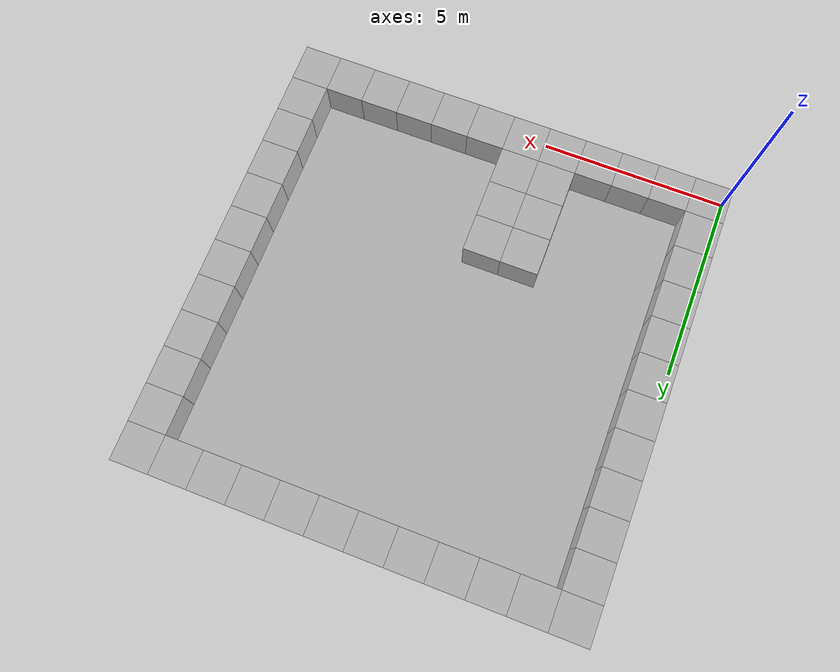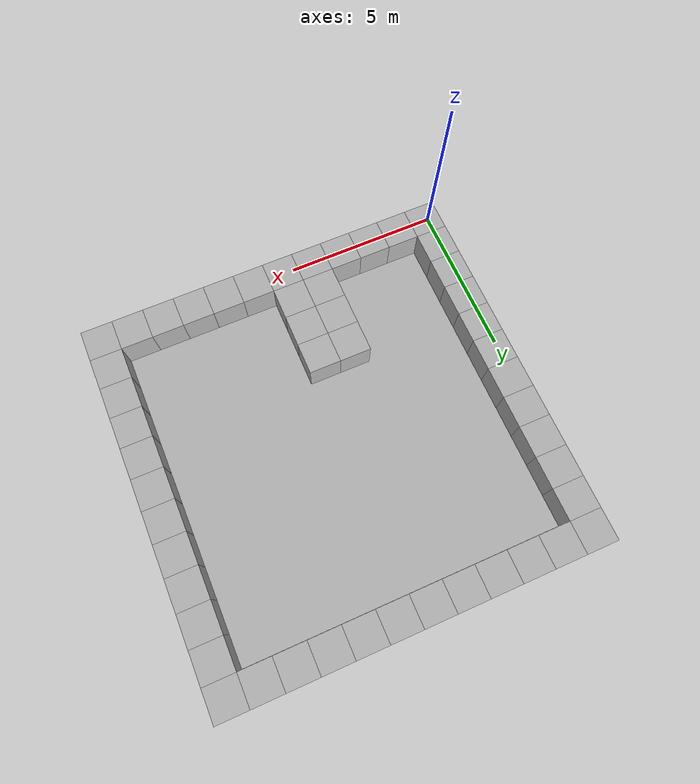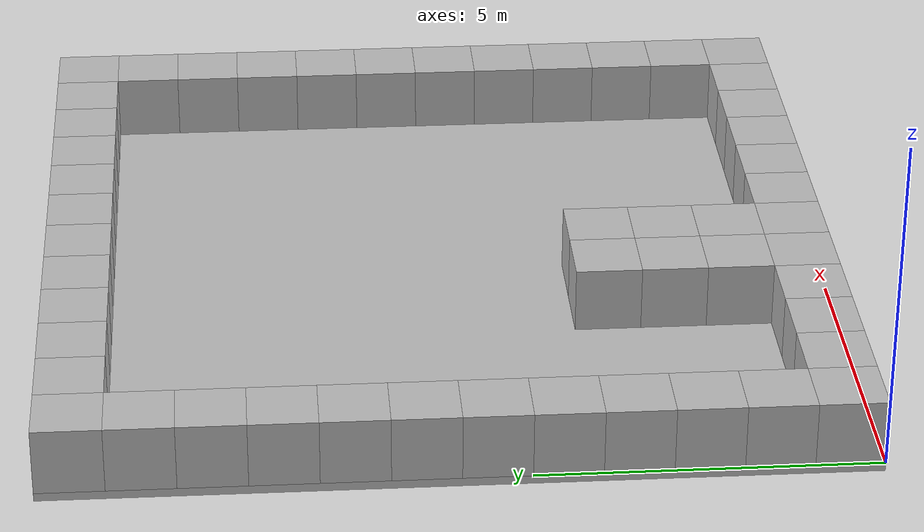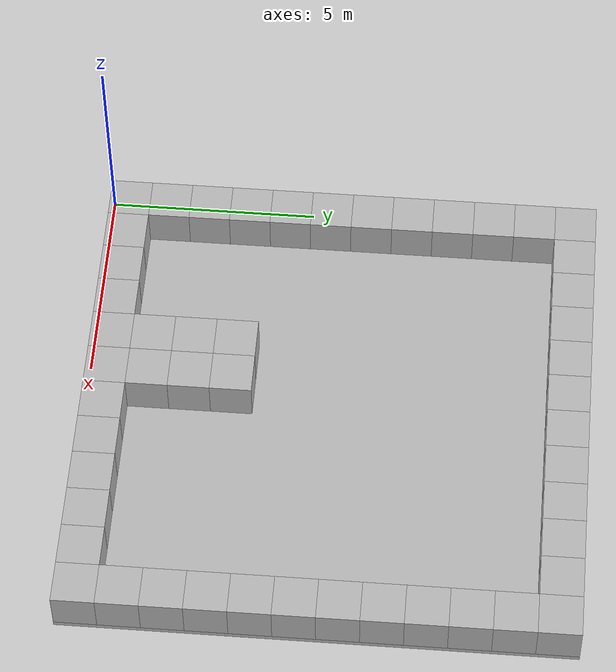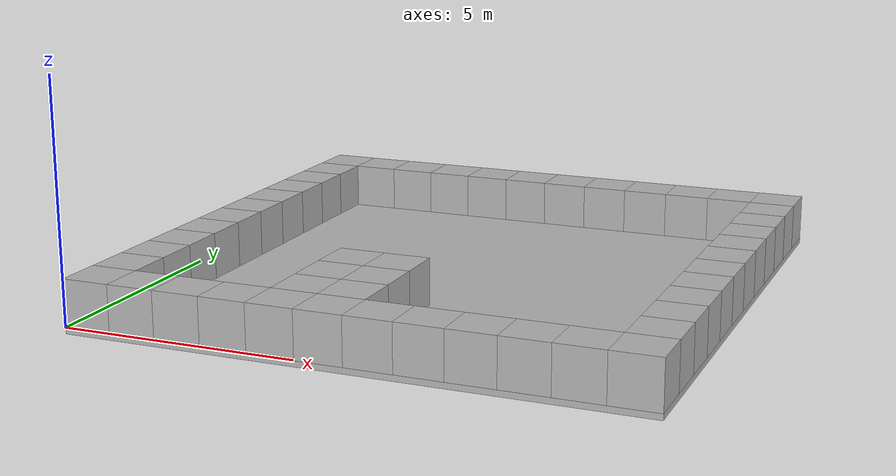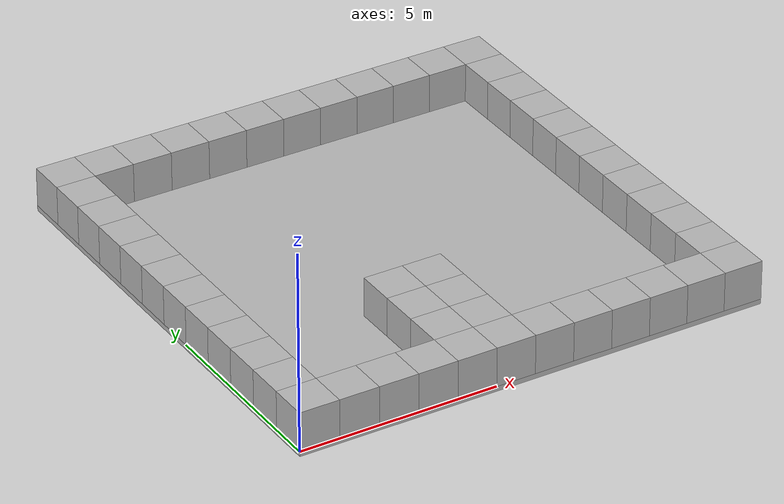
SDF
<sdf version="1.4">
  <world name="default">
    <light name="sun" type="directional">
      <cast_shadows>1</cast_shadows>
      <diffuse>0.8 0.8 0.8 1</diffuse>
      <specular>0.1 0.1 0.1 1</specular>
      <attenuation>
        <range>1000</range>
        <constant>0.9</constant>
        <linear>0.01</linear>
        <quadratic>0.001</quadratic>
      </attenuation>
      <direction>-0.5 0.5 -1</direction>
    </light>
    <plugin
      filename="ignition-gazebo-physics-system"
      name="ignition::gazebo::systems::Physics">
    </plugin>
    <plugin
      filename="ignition-gazebo-user-commands-system"
      name="ignition::gazebo::systems::UserCommands">
    </plugin>
    <plugin
      filename="ignition-gazebo-scene-broadcaster-system"
      name="ignition::gazebo::systems::SceneBroadcaster">
    </plugin>
    <plugin
      filename="ignition-gazebo-sensors-system"
      name="ignition::gazebo::systems::Sensors">
      <render_engine>ogre2</render_engine>
    </plugin>

    <model name="floor">
      <pose>6.0 6.0 -0.0625 0 0 0</pose>
      <static>true</static>
      <link name="link">
        <collision name="collision">
          <geometry>
            <box>
              <size>12.0 12.0 0.125</size>
            </box>
          </geometry>
        </collision>
        <visual name="visual">
          <geometry>
            <box>
              <size>12.0 12.0 0.125</size>
            </box>
          </geometry>
        </visual>
      </link>
    </model>
    <model name="box_0_0">
      <pose>0.5 0.5 0.5 0 0 0</pose>
      <static>true</static>
      <link name="link">
        <collision name="collision">
          <geometry>
            <box>
              <size>1.0 1.0 1.0</size>
            </box>
          </geometry>
        </collision>
        <visual name="visual">
          <geometry>
            <box>
              <size>1.0 1.0 1.0</size>
            </box>
          </geometry>
        </visual>
      </link>
    </model>
    <model name="box_0_1">
      <pose>0.5 1.5 0.5 0 0 0</pose>
      <static>true</static>
      <link name="link">
        <collision name="collision">
          <geometry>
            <box>
              <size>1.0 1.0 1.0</size>
            </box>
          </geometry>
        </collision>
        <visual name="visual">
          <geometry>
            <box>
              <size>1.0 1.0 1.0</size>
            </box>
          </geometry>
        </visual>
      </link>
    </model>
    <model name="box_0_2">
      <pose>0.5 2.5 0.5 0 0 0</pose>
      <static>true</static>
      <link name="link">
        <collision name="collision">
          <geometry>
            <box>
              <size>1.0 1.0 1.0</size>
            </box>
          </geometry>
        </collision>
        <visual name="visual">
          <geometry>
            <box>
              <size>1.0 1.0 1.0</size>
            </box>
          </geometry>
        </visual>
      </link>
    </model>
    <model name="box_0_3">
      <pose>0.5 3.5 0.5 0 0 0</pose>
      <static>true</static>
      <link name="link">
        <collision name="collision">
          <geometry>
            <box>
              <size>1.0 1.0 1.0</size>
            </box>
          </geometry>
        </collision>
        <visual name="visual">
          <geometry>
            <box>
              <size>1.0 1.0 1.0</size>
            </box>
          </geometry>
        </visual>
      </link>
    </model>
    <model name="box_0_4">
      <pose>0.5 4.5 0.5 0 0 0</pose>
      <static>true</static>
      <link name="link">
        <collision name="collision">
          <geometry>
            <box>
              <size>1.0 1.0 1.0</size>
            </box>
          </geometry>
        </collision>
        <visual name="visual">
          <geometry>
            <box>
              <size>1.0 1.0 1.0</size>
            </box>
          </geometry>
        </visual>
      </link>
    </model>
    <model name="box_0_5">
      <pose>0.5 5.5 0.5 0 0 0</pose>
      <static>true</static>
      <link name="link">
        <collision name="collision">
          <geometry>
            <box>
              <size>1.0 1.0 1.0</size>
            </box>
          </geometry>
        </collision>
        <visual name="visual">
          <geometry>
            <box>
              <size>1.0 1.0 1.0</size>
            </box>
          </geometry>
        </visual>
      </link>
    </model>
    <model name="box_0_6">
      <pose>0.5 6.5 0.5 0 0 0</pose>
      <static>true</static>
      <link name="link">
        <collision name="collision">
          <geometry>
            <box>
              <size>1.0 1.0 1.0</size>
            </box>
          </geometry>
        </collision>
        <visual name="visual">
          <geometry>
            <box>
              <size>1.0 1.0 1.0</size>
            </box>
          </geometry>
        </visual>
      </link>
    </model>
    <model name="box_0_7">
      <pose>0.5 7.5 0.5 0 0 0</pose>
      <static>true</static>
      <link name="link">
        <collision name="collision">
          <geometry>
            <box>
              <size>1.0 1.0 1.0</size>
            </box>
          </geometry>
        </collision>
        <visual name="visual">
          <geometry>
            <box>
              <size>1.0 1.0 1.0</size>
            </box>
          </geometry>
        </visual>
      </link>
    </model>
    <model name="box_0_8">
      <pose>0.5 8.5 0.5 0 0 0</pose>
      <static>true</static>
      <link name="link">
        <collision name="collision">
          <geometry>
            <box>
              <size>1.0 1.0 1.0</size>
            </box>
          </geometry>
        </collision>
        <visual name="visual">
          <geometry>
            <box>
              <size>1.0 1.0 1.0</size>
            </box>
          </geometry>
        </visual>
      </link>
    </model>
    <model name="box_0_9">
      <pose>0.5 9.5 0.5 0 0 0</pose>
      <static>true</static>
      <link name="link">
        <collision name="collision">
          <geometry>
            <box>
              <size>1.0 1.0 1.0</size>
            </box>
          </geometry>
        </collision>
        <visual name="visual">
          <geometry>
            <box>
              <size>1.0 1.0 1.0</size>
            </box>
          </geometry>
        </visual>
      </link>
    </model>
    <model name="box_0_10">
      <pose>0.5 10.5 0.5 0 0 0</pose>
      <static>true</static>
      <link name="link">
        <collision name="collision">
          <geometry>
            <box>
              <size>1.0 1.0 1.0</size>
            </box>
          </geometry>
        </collision>
        <visual name="visual">
          <geometry>
            <box>
              <size>1.0 1.0 1.0</size>
            </box>
          </geometry>
        </visual>
      </link>
    </model>
    <model name="box_0_11">
      <pose>0.5 11.5 0.5 0 0 0</pose>
      <static>true</static>
      <link name="link">
        <collision name="collision">
          <geometry>
            <box>
              <size>1.0 1.0 1.0</size>
            </box>
          </geometry>
        </collision>
        <visual name="visual">
          <geometry>
            <box>
              <size>1.0 1.0 1.0</size>
            </box>
          </geometry>
        </visual>
      </link>
    </model>
    <model name="box_1_0">
      <pose>1.5 0.5 0.5 0 0 0</pose>
      <static>true</static>
      <link name="link">
        <collision name="collision">
          <geometry>
            <box>
              <size>1.0 1.0 1.0</size>
            </box>
          </geometry>
        </collision>
        <visual name="visual">
          <geometry>
            <box>
              <size>1.0 1.0 1.0</size>
            </box>
          </geometry>
        </visual>
      </link>
    </model>
    <model name="box_1_11">
      <pose>1.5 11.5 0.5 0 0 0</pose>
      <static>true</static>
      <link name="link">
        <collision name="collision">
          <geometry>
            <box>
              <size>1.0 1.0 1.0</size>
            </box>
          </geometry>
        </collision>
        <visual name="visual">
          <geometry>
            <box>
              <size>1.0 1.0 1.0</size>
            </box>
          </geometry>
        </visual>
      </link>
    </model>
    <model name="box_2_0">
      <pose>2.5 0.5 0.5 0 0 0</pose>
      <static>true</static>
      <link name="link">
        <collision name="collision">
          <geometry>
            <box>
              <size>1.0 1.0 1.0</size>
            </box>
          </geometry>
        </collision>
        <visual name="visual">
          <geometry>
            <box>
              <size>1.0 1.0 1.0</size>
            </box>
          </geometry>
        </visual>
      </link>
    </model>
    <model name="box_2_11">
      <pose>2.5 11.5 0.5 0 0 0</pose>
      <static>true</static>
      <link name="link">
        <collision name="collision">
          <geometry>
            <box>
              <size>1.0 1.0 1.0</size>
            </box>
          </geometry>
        </collision>
        <visual name="visual">
          <geometry>
            <box>
              <size>1.0 1.0 1.0</size>
            </box>
          </geometry>
        </visual>
      </link>
    </model>
    <model name="box_3_0">
      <pose>3.5 0.5 0.5 0 0 0</pose>
      <static>true</static>
      <link name="link">
        <collision name="collision">
          <geometry>
            <box>
              <size>1.0 1.0 1.0</size>
            </box>
          </geometry>
        </collision>
        <visual name="visual">
          <geometry>
            <box>
              <size>1.0 1.0 1.0</size>
            </box>
          </geometry>
        </visual>
      </link>
    </model>
    <model name="box_3_11">
      <pose>3.5 11.5 0.5 0 0 0</pose>
      <static>true</static>
      <link name="link">
        <collision name="collision">
          <geometry>
            <box>
              <size>1.0 1.0 1.0</size>
            </box>
          </geometry>
        </collision>
        <visual name="visual">
          <geometry>
            <box>
              <size>1.0 1.0 1.0</size>
            </box>
          </geometry>
        </visual>
      </link>
    </model>
    <model name="box_4_0">
      <pose>4.5 0.5 0.5 0 0 0</pose>
      <static>true</static>
      <link name="link">
        <collision name="collision">
          <geometry>
            <box>
              <size>1.0 1.0 1.0</size>
            </box>
          </geometry>
        </collision>
        <visual name="visual">
          <geometry>
            <box>
              <size>1.0 1.0 1.0</size>
            </box>
          </geometry>
        </visual>
      </link>
    </model>
    <model name="box_4_1">
      <pose>4.5 1.5 0.5 0 0 0</pose>
      <static>true</static>
      <link name="link">
        <collision name="collision">
          <geometry>
            <box>
              <size>1.0 1.0 1.0</size>
            </box>
          </geometry>
        </collision>
        <visual name="visual">
          <geometry>
            <box>
              <size>1.0 1.0 1.0</size>
            </box>
          </geometry>
        </visual>
      </link>
    </model>
    <model name="box_4_2">
      <pose>4.5 2.5 0.5 0 0 0</pose>
      <static>true</static>
      <link name="link">
        <collision name="collision">
          <geometry>
            <box>
              <size>1.0 1.0 1.0</size>
            </box>
          </geometry>
        </collision>
        <visual name="visual">
          <geometry>
            <box>
              <size>1.0 1.0 1.0</size>
            </box>
          </geometry>
        </visual>
      </link>
    </model>
    <model name="box_4_3">
      <pose>4.5 3.5 0.5 0 0 0</pose>
      <static>true</static>
      <link name="link">
        <collision name="collision">
          <geometry>
            <box>
              <size>1.0 1.0 1.0</size>
            </box>
          </geometry>
        </collision>
        <visual name="visual">
          <geometry>
            <box>
              <size>1.0 1.0 1.0</size>
            </box>
          </geometry>
        </visual>
      </link>
    </model>
    <model name="box_4_11">
      <pose>4.5 11.5 0.5 0 0 0</pose>
      <static>true</static>
      <link name="link">
        <collision name="collision">
          <geometry>
            <box>
              <size>1.0 1.0 1.0</size>
            </box>
          </geometry>
        </collision>
        <visual name="visual">
          <geometry>
            <box>
              <size>1.0 1.0 1.0</size>
            </box>
          </geometry>
        </visual>
      </link>
    </model>
    <model name="box_5_0">
      <pose>5.5 0.5 0.5 0 0 0</pose>
      <static>true</static>
      <link name="link">
        <collision name="collision">
          <geometry>
            <box>
              <size>1.0 1.0 1.0</size>
            </box>
          </geometry>
        </collision>
        <visual name="visual">
          <geometry>
            <box>
              <size>1.0 1.0 1.0</size>
            </box>
          </geometry>
        </visual>
      </link>
    </model>
    <model name="box_5_1">
      <pose>5.5 1.5 0.5 0 0 0</pose>
      <static>true</static>
      <link name="link">
        <collision name="collision">
          <geometry>
            <box>
              <size>1.0 1.0 1.0</size>
            </box>
          </geometry>
        </collision>
        <visual name="visual">
          <geometry>
            <box>
              <size>1.0 1.0 1.0</size>
            </box>
          </geometry>
        </visual>
      </link>
    </model>
    <model name="box_5_2">
      <pose>5.5 2.5 0.5 0 0 0</pose>
      <static>true</static>
      <link name="link">
        <collision name="collision">
          <geometry>
            <box>
              <size>1.0 1.0 1.0</size>
            </box>
          </geometry>
        </collision>
        <visual name="visual">
          <geometry>
            <box>
              <size>1.0 1.0 1.0</size>
            </box>
          </geometry>
        </visual>
      </link>
    </model>
    <model name="box_5_3">
      <pose>5.5 3.5 0.5 0 0 0</pose>
      <static>true</static>
      <link name="link">
        <collision name="collision">
          <geometry>
            <box>
              <size>1.0 1.0 1.0</size>
            </box>
          </geometry>
        </collision>
        <visual name="visual">
          <geometry>
            <box>
              <size>1.0 1.0 1.0</size>
            </box>
          </geometry>
        </visual>
      </link>
    </model>
    <model name="box_5_11">
      <pose>5.5 11.5 0.5 0 0 0</pose>
      <static>true</static>
      <link name="link">
        <collision name="collision">
          <geometry>
            <box>
              <size>1.0 1.0 1.0</size>
            </box>
          </geometry>
        </collision>
        <visual name="visual">
          <geometry>
            <box>
              <size>1.0 1.0 1.0</size>
            </box>
          </geometry>
        </visual>
      </link>
    </model>
    <model name="box_6_0">
      <pose>6.5 0.5 0.5 0 0 0</pose>
      <static>true</static>
      <link name="link">
        <collision name="collision">
          <geometry>
            <box>
              <size>1.0 1.0 1.0</size>
            </box>
          </geometry>
        </collision>
        <visual name="visual">
          <geometry>
            <box>
              <size>1.0 1.0 1.0</size>
            </box>
          </geometry>
        </visual>
      </link>
    </model>
    <model name="box_6_11">
      <pose>6.5 11.5 0.5 0 0 0</pose>
      <static>true</static>
      <link name="link">
        <collision name="collision">
          <geometry>
            <box>
              <size>1.0 1.0 1.0</size>
            </box>
          </geometry>
        </collision>
        <visual name="visual">
          <geometry>
            <box>
              <size>1.0 1.0 1.0</size>
            </box>
          </geometry>
        </visual>
      </link>
    </model>
    <model name="box_7_0">
      <pose>7.5 0.5 0.5 0 0 0</pose>
      <static>true</static>
      <link name="link">
        <collision name="collision">
          <geometry>
            <box>
              <size>1.0 1.0 1.0</size>
            </box>
          </geometry>
        </collision>
        <visual name="visual">
          <geometry>
            <box>
              <size>1.0 1.0 1.0</size>
            </box>
          </geometry>
        </visual>
      </link>
    </model>
    <model name="box_7_11">
      <pose>7.5 11.5 0.5 0 0 0</pose>
      <static>true</static>
      <link name="link">
        <collision name="collision">
          <geometry>
            <box>
              <size>1.0 1.0 1.0</size>
            </box>
          </geometry>
        </collision>
        <visual name="visual">
          <geometry>
            <box>
              <size>1.0 1.0 1.0</size>
            </box>
          </geometry>
        </visual>
      </link>
    </model>
    <model name="box_8_0">
      <pose>8.5 0.5 0.5 0 0 0</pose>
      <static>true</static>
      <link name="link">
        <collision name="collision">
          <geometry>
            <box>
              <size>1.0 1.0 1.0</size>
            </box>
          </geometry>
        </collision>
        <visual name="visual">
          <geometry>
            <box>
              <size>1.0 1.0 1.0</size>
            </box>
          </geometry>
        </visual>
      </link>
    </model>
    <model name="box_8_11">
      <pose>8.5 11.5 0.5 0 0 0</pose>
      <static>true</static>
      <link name="link">
        <collision name="collision">
          <geometry>
            <box>
              <size>1.0 1.0 1.0</size>
            </box>
          </geometry>
        </collision>
        <visual name="visual">
          <geometry>
            <box>
              <size>1.0 1.0 1.0</size>
            </box>
          </geometry>
        </visual>
      </link>
    </model>
    <model name="box_9_0">
      <pose>9.5 0.5 0.5 0 0 0</pose>
      <static>true</static>
      <link name="link">
        <collision name="collision">
          <geometry>
            <box>
              <size>1.0 1.0 1.0</size>
            </box>
          </geometry>
        </collision>
        <visual name="visual">
          <geometry>
            <box>
              <size>1.0 1.0 1.0</size>
            </box>
          </geometry>
        </visual>
      </link>
    </model>
    <model name="box_9_11">
      <pose>9.5 11.5 0.5 0 0 0</pose>
      <static>true</static>
      <link name="link">
        <collision name="collision">
          <geometry>
            <box>
              <size>1.0 1.0 1.0</size>
            </box>
          </geometry>
        </collision>
        <visual name="visual">
          <geometry>
            <box>
              <size>1.0 1.0 1.0</size>
            </box>
          </geometry>
        </visual>
      </link>
    </model>
    <model name="box_10_0">
      <pose>10.5 0.5 0.5 0 0 0</pose>
      <static>true</static>
      <link name="link">
        <collision name="collision">
          <geometry>
            <box>
              <size>1.0 1.0 1.0</size>
            </box>
          </geometry>
        </collision>
        <visual name="visual">
          <geometry>
            <box>
              <size>1.0 1.0 1.0</size>
            </box>
          </geometry>
        </visual>
      </link>
    </model>
    <model name="box_10_11">
      <pose>10.5 11.5 0.5 0 0 0</pose>
      <static>true</static>
      <link name="link">
        <collision name="collision">
          <geometry>
            <box>
              <size>1.0 1.0 1.0</size>
            </box>
          </geometry>
        </collision>
        <visual name="visual">
          <geometry>
            <box>
              <size>1.0 1.0 1.0</size>
            </box>
          </geometry>
        </visual>
      </link>
    </model>
    <model name="box_11_0">
      <pose>11.5 0.5 0.5 0 0 0</pose>
      <static>true</static>
      <link name="link">
        <collision name="collision">
          <geometry>
            <box>
              <size>1.0 1.0 1.0</size>
            </box>
          </geometry>
        </collision>
        <visual name="visual">
          <geometry>
            <box>
              <size>1.0 1.0 1.0</size>
            </box>
          </geometry>
        </visual>
      </link>
    </model>
    <model name="box_11_1">
      <pose>11.5 1.5 0.5 0 0 0</pose>
      <static>true</static>
      <link name="link">
        <collision name="collision">
          <geometry>
            <box>
              <size>1.0 1.0 1.0</size>
            </box>
          </geometry>
        </collision>
        <visual name="visual">
          <geometry>
            <box>
              <size>1.0 1.0 1.0</size>
            </box>
          </geometry>
        </visual>
      </link>
    </model>
    <model name="box_11_2">
      <pose>11.5 2.5 0.5 0 0 0</pose>
      <static>true</static>
      <link name="link">
        <collision name="collision">
          <geometry>
            <box>
              <size>1.0 1.0 1.0</size>
            </box>
          </geometry>
        </collision>
        <visual name="visual">
          <geometry>
            <box>
              <size>1.0 1.0 1.0</size>
            </box>
          </geometry>
        </visual>
      </link>
    </model>
    <model name="box_11_3">
      <pose>11.5 3.5 0.5 0 0 0</pose>
      <static>true</static>
      <link name="link">
        <collision name="collision">
          <geometry>
            <box>
              <size>1.0 1.0 1.0</size>
            </box>
          </geometry>
        </collision>
        <visual name="visual">
          <geometry>
            <box>
              <size>1.0 1.0 1.0</size>
            </box>
          </geometry>
        </visual>
      </link>
    </model>
    <model name="box_11_4">
      <pose>11.5 4.5 0.5 0 0 0</pose>
      <static>true</static>
      <link name="link">
        <collision name="collision">
          <geometry>
            <box>
              <size>1.0 1.0 1.0</size>
            </box>
          </geometry>
        </collision>
        <visual name="visual">
          <geometry>
            <box>
              <size>1.0 1.0 1.0</size>
            </box>
          </geometry>
        </visual>
      </link>
    </model>
    <model name="box_11_5">
      <pose>11.5 5.5 0.5 0 0 0</pose>
      <static>true</static>
      <link name="link">
        <collision name="collision">
          <geometry>
            <box>
              <size>1.0 1.0 1.0</size>
            </box>
          </geometry>
        </collision>
        <visual name="visual">
          <geometry>
            <box>
              <size>1.0 1.0 1.0</size>
            </box>
          </geometry>
        </visual>
      </link>
    </model>
    <model name="box_11_6">
      <pose>11.5 6.5 0.5 0 0 0</pose>
      <static>true</static>
      <link name="link">
        <collision name="collision">
          <geometry>
            <box>
              <size>1.0 1.0 1.0</size>
            </box>
          </geometry>
        </collision>
        <visual name="visual">
          <geometry>
            <box>
              <size>1.0 1.0 1.0</size>
            </box>
          </geometry>
        </visual>
      </link>
    </model>
    <model name="box_11_7">
      <pose>11.5 7.5 0.5 0 0 0</pose>
      <static>true</static>
      <link name="link">
        <collision name="collision">
          <geometry>
            <box>
              <size>1.0 1.0 1.0</size>
            </box>
          </geometry>
        </collision>
        <visual name="visual">
          <geometry>
            <box>
              <size>1.0 1.0 1.0</size>
            </box>
          </geometry>
        </visual>
      </link>
    </model>
    <model name="box_11_8">
      <pose>11.5 8.5 0.5 0 0 0</pose>
      <static>true</static>
      <link name="link">
        <collision name="collision">
          <geometry>
            <box>
              <size>1.0 1.0 1.0</size>
            </box>
          </geometry>
        </collision>
        <visual name="visual">
          <geometry>
            <box>
              <size>1.0 1.0 1.0</size>
            </box>
          </geometry>
        </visual>
      </link>
    </model>
    <model name="box_11_9">
      <pose>11.5 9.5 0.5 0 0 0</pose>
      <static>true</static>
      <link name="link">
        <collision name="collision">
          <geometry>
            <box>
              <size>1.0 1.0 1.0</size>
            </box>
          </geometry>
        </collision>
        <visual name="visual">
          <geometry>
            <box>
              <size>1.0 1.0 1.0</size>
            </box>
          </geometry>
        </visual>
      </link>
    </model>
    <model name="box_11_10">
      <pose>11.5 10.5 0.5 0 0 0</pose>
      <static>true</static>
      <link name="link">
        <collision name="collision">
          <geometry>
            <box>
              <size>1.0 1.0 1.0</size>
            </box>
          </geometry>
        </collision>
        <visual name="visual">
          <geometry>
            <box>
              <size>1.0 1.0 1.0</size>
            </box>
          </geometry>
        </visual>
      </link>
    </model>
    <model name="box_11_11">
      <pose>11.5 11.5 0.5 0 0 0</pose>
      <static>true</static>
      <link name="link">
        <collision name="collision">
          <geometry>
            <box>
              <size>1.0 1.0 1.0</size>
            </box>
          </geometry>
        </collision>
        <visual name="visual">
          <geometry>
            <box>
              <size>1.0 1.0 1.0</size>
            </box>
          </geometry>
        </visual>
      </link>
    </model>
  </world>
</sdf>
